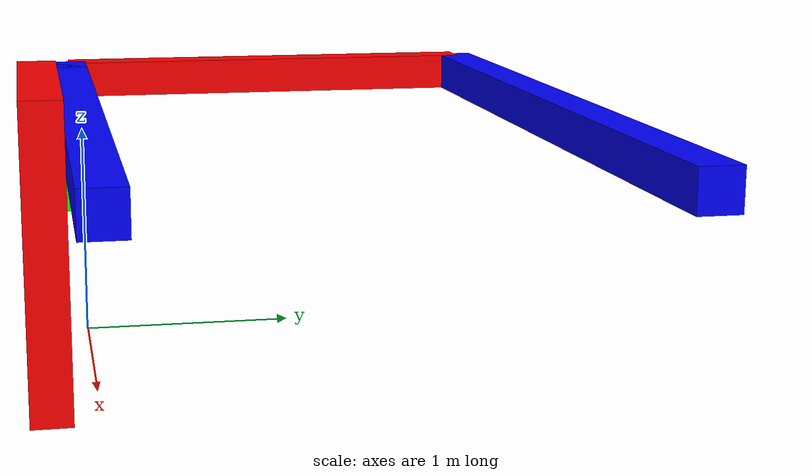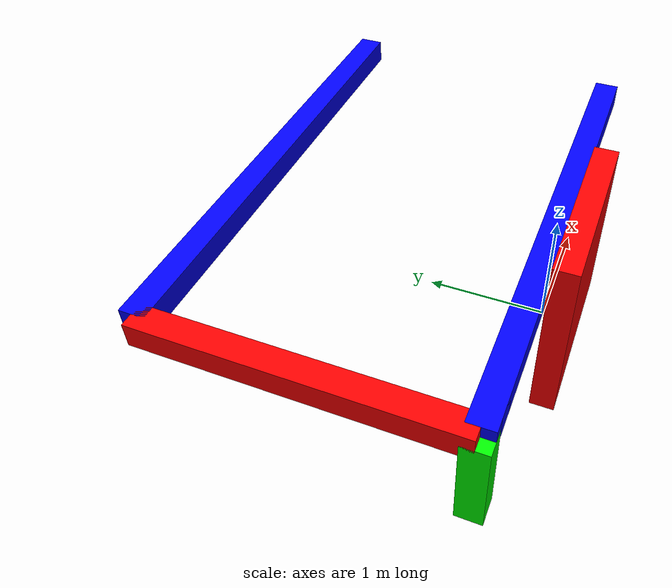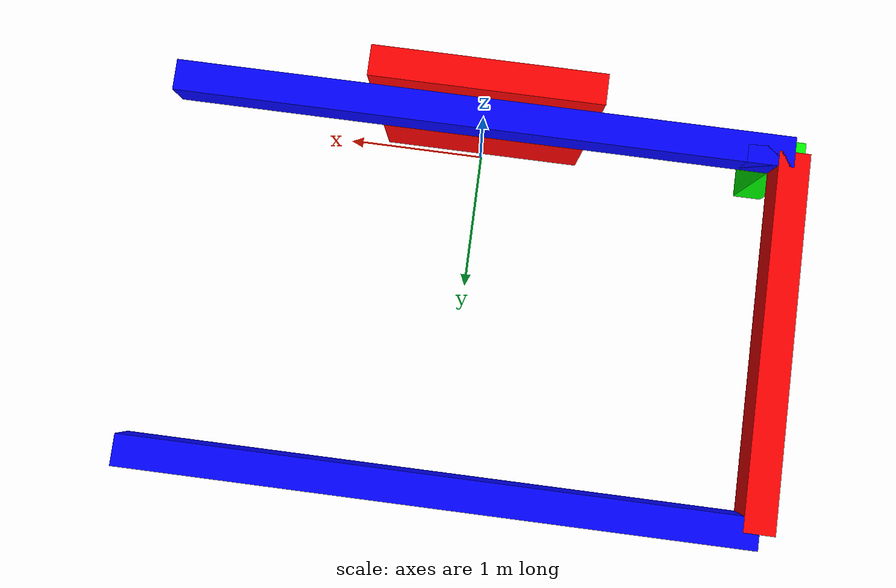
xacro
<?xml version="1.0"?>
<robot xmlns:xacro="http://ros.org/wiki/xacro" name="cartesian_robot">

  <material name="blue">
    <color rgba="0 0 1 1" />
  </material>

  <material name="red">
    <color rgba="1 0 0 1" />
  </material>

  <material name="green">
    <color rgba="0 1 0 1" />
  </material>

  <link name="base_link" />

  <xacro:property name="z_offset" value="1.0" />
  <xacro:property name="l1" value="4.0" />
  <xacro:property name="l2" value="2.4" />
  <xacro:property name="l3" value="0.8" />
  <xacro:property name="l4" value="0.2" />
  <xacro:property name="width" value="0.2" />
  <xacro:property name="holder_offset" value="${z_offset + 0.5}"/>

  <link name="holder_link">
    <inertial>
      <origin xyz="0 ${-width} 0.5" rpy="0 0 0"/>
      <mass value="1000"/>
      <inertia ixx="1000" ixy="0" ixz="0" iyy="1000" iyz="0" izz="1000"/>
    </inertial>
    <visual>
      <origin xyz="0 ${-width} 0.5" rpy="0 0 0"/>
      <geometry>
        <box size="${holder_offset} ${width} ${holder_offset}"/>
      </geometry>
      <material name="red"/>
    </visual>
    <collision>
      <origin xyz="0 ${-width} 0.5" rpy="0 0 0"/>
      <geometry>
        <box size="${holder_offset} ${width} ${holder_offset}"/>
      </geometry>
    </collision>
  </link>

  <link name="link1">
    <inertial>
      <origin xyz="0 0 0" rpy="0 0 0"/>
      <mass value="1"/>
      <inertia ixx="100" ixy="0" ixz="0" iyy="100" iyz="0" izz="100"/>
    </inertial>
    <visual>
      <origin xyz="0 0 0" rpy="0 0 0"/>
      <geometry>
        <box size="${l1} ${width} ${width}"/>
      </geometry>
      <material name="blue"/>
    </visual>
    <collision>
      <origin xyz="0 0 0" rpy="0 0 0"/>
      <geometry>
        <box size="${l1} ${width} ${width}"/>
      </geometry>
    </collision>
  </link>

  <link name="link1_b">
    <inertial>
      <origin xyz="0 0 0" rpy="0 0 0"/>
      <mass value="1"/>
      <inertia ixx="100" ixy="0" ixz="0" iyy="100" iyz="0" izz="100"/>
    </inertial>
    <visual>
      <origin xyz="0 0 0" rpy="0 0 0"/>
      <geometry>
        <box size="${l1} ${width} ${width}"/>
      </geometry>
      <material name="blue"/>
    </visual>
    <collision>
      <origin xyz="0 0 0" rpy="0 0 0"/>
      <geometry>
        <box size="${l1} ${width} ${width}"/>
      </geometry>
    </collision>
  </link>

  <link name="link2">
    <inertial>
      <origin xyz="0 0 0" rpy="0 0 0"/>
      <mass value="1"/>
      <inertia ixx="1000" ixy="0" ixz="0" iyy="1000" iyz="0" izz="1000"/>
    </inertial>
    <visual>
      <origin xyz="0 ${l2/2} 0" rpy="0 0 0"/>
      <geometry>
        <box size="${width} ${l2} ${width}"/>
      </geometry>
      <material name="red"/>
    </visual>
    <collision>
      <origin xyz="0 ${l2/2} 0" rpy="0 0 0"/>
      <geometry>
        <box size="${width} ${l2} ${width}"/>
      </geometry>
    </collision>
  </link>

  <link name="link3">
    <inertial>
      <origin xyz="0 0 0" rpy="0 0 0"/>
      <mass value="1"/>
      <inertia ixx="1000" ixy="0" ixz="0" iyy="1000" iyz="0" izz="1000"/>
    </inertial>
    <visual>
      <origin xyz="0 0 ${-l3/2}" rpy="0 0 0"/>
      <geometry>
        <box size="${width} ${width} ${l3}"/>
      </geometry>
      <material name="green"/>
    </visual>
    <collision>
      <origin xyz="0 0 ${-l3/2}" rpy="0 0 0"/>
      <geometry>
        <box size="${width} ${width} ${l3}"/>
      </geometry>
    </collision>
  </link>

  <link name="link4">
    <inertial>
      <origin xyz="0 0 0" rpy="0 0 0"/>
      <mass value="1"/>
      <inertia ixx="100" ixy="0" ixz="0" iyy="100" iyz="0" izz="100"/>
    </inertial>
    <visual>
      <origin xyz="0 0 0" rpy="0 0 0"/>
      <geometry>
        <box size="${l4} ${l4} ${l4}"/>
      </geometry>
      <material name="blue"/>
    </visual>
    <collision>
      <origin xyz="0 0 0" rpy="0 0 0"/>
      <geometry>
        <box size="${l4} ${l4} ${l4}"/>
      </geometry>
    </collision>
  </link>

   <joint name="fixed_holder_joint" type="fixed">
    <parent link="base_link"/>
    <child link="holder_link"/>
    <origin xyz="0 0 0" rpy="0 0 0"/>
  </joint>

  <joint name="fixed_link_1" type="fixed">
    <parent link="holder_link"/>
    <child link="link1"/>
    <origin xyz="0 0 ${z_offset}" rpy="0 0 0"/>
  </joint>

  <joint name="fixed_link_1_b" type="fixed">
    <parent link="holder_link"/>
    <child link="link1_b"/>
    <origin xyz="0 ${l2} ${z_offset}" rpy="0 0 0"/>
  </joint>

  <joint name="prismatic_joint_1" type="prismatic">
    <parent link="link1"/>
    <child link="link2"/>
    <origin xyz="${-l1/2} 0 0" rpy="0 0 0"/>
    <axis xyz="1 0 0"/>
    <limit lower="0.0" upper="${l1}" effort="10" velocity="2.0"/>
  </joint>

  <joint name="prismatic_joint_2" type="prismatic">
    <parent link="link2"/>
    <child link="link3"/>
    <origin xyz="0 0 0" rpy="0 0 0"/>
    <axis xyz="0 1 0"/>
    <limit lower="0.0" upper="${l2}" effort="100" velocity="2.0"/>
  </joint>

  <joint name="prismatic_joint_3" type="prismatic">
    <parent link="link3"/>
    <child link="link4"/>
    <origin xyz="${width} 0 0" rpy="0 0 0"/>
    <axis xyz="0 0 -1"/>
    <limit lower="0.0" upper="${l3}" effort="100" velocity="2.0"/>
  </joint>

</robot>
